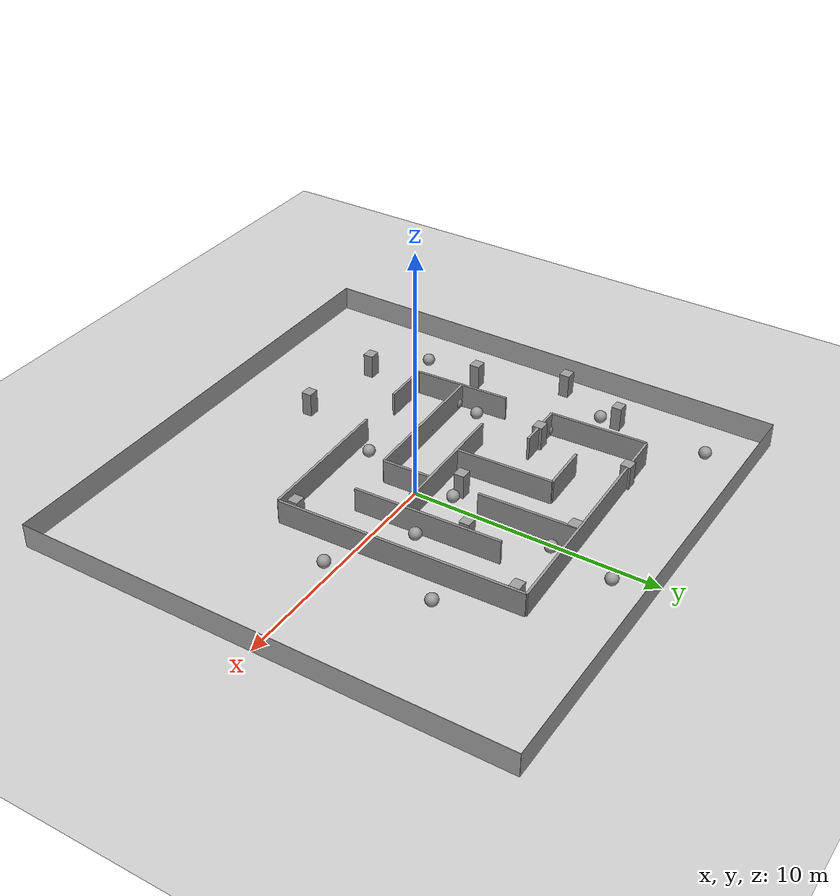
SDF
<sdf version="1.7">
 <world name="default">
  <physics type="ode">
   <max_step_size>0.004</max_step_size>
   <real_time_factor>1</real_time_factor>
   <real_time_update_rate>250</real_time_update_rate>
  </physics>
  <plugin name="gz::sim::systems::Physics" filename="gz-sim-physics-system"/>
  <plugin name="gz::sim::systems::UserCommands" filename="gz-sim-user-commands-system"/>
  <plugin name="gz::sim::systems::SceneBroadcaster" filename="gz-sim-scene-broadcaster-system"/>
  <plugin name="gz::sim::systems::Contact" filename="gz-sim-contact-system"/>
  <plugin name="gz::sim::systems::Imu" filename="gz-sim-imu-system"/>
  <plugin name="gz::sim::systems::Magnetometer" filename="gz-sim-magnetometer-system"/>
  <plugin name="gz::sim::systems::Altimeter" filename="gz-sim-altimeter-system"/>
  <plugin name="gz::sim::systems::NavSat" filename="gz-sim-navsat-system"/>
  <plugin name="gz::sim::systems::Sensors" filename="gz-sim-sensors-system">
   <render_engine>ogre2</render_engine>
  </plugin>
  <gravity>0 0 -9.8</gravity>
  <magnetic_field>6e-06 2.3e-05 -4.2e-05</magnetic_field>
  <atmosphere type="adiabatic"/>
  <spherical_coordinates>
   <surface_model>EARTH_WGS84</surface_model>
   <latitude_deg>39.7948</latitude_deg>
   <longitude_deg>-84.0863</longitude_deg>
   <elevation>265.2</elevation>
   <heading_deg>0</heading_deg>
  </spherical_coordinates>
  <scene>
   <grid>1</grid>
   <ambient>0.4 0.4 0.4 1</ambient>
   <background>0.7 0.7 0.7 1</background>
   <shadows>0</shadows>
  </scene>
  <light name="sunUTC" type="directional">
   <pose>0 0 500 0 -0 0</pose>
   <cast_shadows>0</cast_shadows>
   <direction>0.001 0.625 -0.78</direction>
   <diffuse>0.904 0.904 0.904 1</diffuse>
   <specular>0.271 0.271 0.271 1</specular>
   <attenuation><range>2000</range><linear>0</linear><constant>1</constant><quadratic>0</quadratic></attenuation>
   <spot><inner_angle>0</inner_angle><outer_angle>0</outer_angle><falloff>0</falloff></spot>
   <intensity>1</intensity>
  </light>
  <model name="ground_plane">
   <static>1</static>
   <link name="link">
    <collision name="collision">
     <geometry><plane><normal>0 0 1</normal><size>1 1</size></plane></geometry>
    </collision>
    <visual name="visual">
     <geometry><plane><normal>0 0 1</normal><size>100 100</size></plane></geometry>
     <material>
      <ambient>0.8 0.8 0.8 1</ambient>
      <diffuse>0.8 0.8 0.8 1</diffuse>
      <specular>0.8 0.8 0.8 1</specular>
     </material>
    </visual>
    <inertial>
     <mass>1</mass>
     <inertia><ixx>1</ixx><ixy>0</ixy><ixz>0</ixz><iyy>1</iyy><iyz>0</iyz><izz>1</izz></inertia>
    </inertial>
   </link>
  </model>
  <model name="wall_1">
   <pose>-10 0 0.5 0 0 -1.57</pose>
   <static>1</static>
   <link name="link">
    <collision name="collision"><geometry><box><size>20 0.01 1</size></box></geometry></collision>
    <visual name="visual">
     <geometry><box><size>20 0.01 1</size></box></geometry>
     <material>
      <ambient>0.7 0.7 0.7 1</ambient>
      <diffuse>0.7 0.7 0.7 1</diffuse>
      <specular>0.7 0.7 0.7 1</specular>
     </material>
    </visual>
    <inertial>
     <mass>1</mass>
     <inertia><ixx>1</ixx><ixy>0</ixy><ixz>0</ixz><iyy>1</iyy><iyz>0</iyz><izz>1</izz></inertia>
    </inertial>
   </link>
  </model>
  <model name="wall_2">
   <pose>10 0 0.5 0 0 -1.57</pose>
   <static>1</static>
   <link name="link">
    <collision name="collision"><geometry><box><size>20 0.01 1</size></box></geometry></collision>
    <visual name="visual">
     <geometry><box><size>20 0.01 1</size></box></geometry>
     <material>
      <ambient>0.7 0.7 0.7 1</ambient>
      <diffuse>0.7 0.7 0.7 1</diffuse>
      <specular>0.7 0.7 0.7 1</specular>
     </material>
    </visual>
    <inertial>
     <mass>1</mass>
     <inertia><ixx>1</ixx><ixy>0</ixy><ixz>0</ixz><iyy>1</iyy><iyz>0</iyz><izz>1</izz></inertia>
    </inertial>
   </link>
  </model>
  <model name="wall_3">
   <pose>0 10 0.5 0 -0 0</pose>
   <static>1</static>
   <link name="link">
    <collision name="collision"><geometry><box><size>20 0.01 1</size></box></geometry></collision>
    <visual name="visual">
     <geometry><box><size>20 0.01 1</size></box></geometry>
     <material>
      <ambient>0.7 0.7 0.7 1</ambient>
      <diffuse>0.7 0.7 0.7 1</diffuse>
      <specular>0.7 0.7 0.7 1</specular>
     </material>
    </visual>
    <inertial>
     <mass>1</mass>
     <inertia><ixx>1</ixx><ixy>0</ixy><ixz>0</ixz><iyy>1</iyy><iyz>0</iyz><izz>1</izz></inertia>
    </inertial>
   </link>
  </model>
  <model name="wall_4">
   <pose>0 -10 0.5 0 -0 0</pose>
   <static>1</static>
   <link name="link">
    <collision name="collision"><geometry><box><size>20 0.01 1</size></box></geometry></collision>
    <visual name="visual">
     <geometry><box><size>20 0.01 1</size></box></geometry>
     <material>
      <ambient>0.7 0.7 0.7 1</ambient>
      <diffuse>0.7 0.7 0.7 1</diffuse>
      <specular>0.7 0.7 0.7 1</specular>
     </material>
    </visual>
    <inertial>
     <mass>1</mass>
     <inertia><ixx>1</ixx><ixy>0</ixy><ixz>0</ixz><iyy>1</iyy><iyz>0</iyz><izz>1</izz></inertia>
    </inertial>
   </link>
  </model>
  <model name="s_maze">
   <link name="link_0_clone">
    <inertial>
     <mass>2000</mass>
     <inertia><ixx>16833.3</ixx><ixy>0</ixy><ixz>0</ixz><iyy>168.333</iyy><iyz>0</iyz><izz>16668.3</izz></inertia>
    </inertial>
    <pose>5 0 0 0 -0 0</pose>
    <visual name="visual">
     <geometry><box><size>0.1 10 1</size></box></geometry>
     <material>
      <lighting>1</lighting>
      <script><uri>file://media/materials/scripts/gazebo.material</uri><name>Gazebo/Grey</name></script>
      <shader type="vertex"><normal_map>__default__</normal_map></shader>
      <ambient>0.3 0.3 0.3 1</ambient>
      <diffuse>0.7 0.7 0.7 1</diffuse>
      <specular>0.01 0.01 0.01 1</specular>
      <emissive>0 0 0 1</emissive>
     </material>
    </visual>
    <collision name="collision">
     <geometry><box><size>0.1 10 1</size></box></geometry>
     <surface>
      <friction>
       <ode><mu>1</mu><mu2>1</mu2><fdir1>0 0 0</fdir1><slip1>0</slip1><slip2>0</slip2></ode>
       <torsional>
        <coefficient>1</coefficient>
        <patch_radius>0</patch_radius>
        <surface_radius>0</surface_radius>
        <use_patch_radius>1</use_patch_radius>
        <ode><slip>0</slip></ode>
       </torsional>
      </friction>
      <bounce><restitution_coefficient>0</restitution_coefficient><threshold>1e+06</threshold></bounce>
      <contact>
       <collide_without_contact>0</collide_without_contact>
       <collide_without_contact_bitmask>1</collide_without_contact_bitmask>
       <collide_bitmask>1</collide_bitmask>
       <ode>
        <soft_cfm>0</soft_cfm>
        <soft_erp>0.2</soft_erp>
        <kp>1e+13</kp>
        <kd>1</kd>
        <max_vel>0.01</max_vel>
        <min_depth>0</min_depth>
       </ode>
       <bullet>
        <split_impulse>1</split_impulse>
        <split_impulse_penetration_threshold>-0.01</split_impulse_penetration_threshold>
        <soft_cfm>0</soft_cfm>
        <soft_erp>0.2</soft_erp>
        <kp>1e+13</kp>
        <kd>1</kd>
       </bullet>
      </contact>
     </surface>
    </collision>
   </link>
   <link name="link_0_clone_0_clone">
    <inertial>
     <mass>400</mass>
     <inertia><ixx>166.667</ixx><ixy>0</ixy><ixz>0</ixz><iyy>33.6667</iyy><iyz>0</iyz><izz>133.667</izz></inertia>
    </inertial>
    <pose>1 -2 -0 0 -0 0</pose>
    <visual name="visual">
     <geometry><box><size>0.1 2 1</size></box></geometry>
     <material>
      <lighting>1</lighting>
      <script><uri>file://media/materials/scripts/gazebo.material</uri><name>Gazebo/Grey</name></script>
      <shader type="vertex"><normal_map>__default__</normal_map></shader>
      <ambient>0.3 0.3 0.3 1</ambient>
      <diffuse>0.7 0.7 0.7 1</diffuse>
      <specular>0.01 0.01 0.01 1</specular>
      <emissive>0 0 0 1</emissive>
     </material>
    </visual>
    <collision name="collision">
     <geometry><box><size>0.1 2 1</size></box></geometry>
     <surface>
      <friction>
       <ode><mu>1</mu><mu2>1</mu2><fdir1>0 0 0</fdir1><slip1>0</slip1><slip2>0</slip2></ode>
       <torsional>
        <coefficient>1</coefficient>
        <patch_radius>0</patch_radius>
        <surface_radius>0</surface_radius>
        <use_patch_radius>1</use_patch_radius>
        <ode><slip>0</slip></ode>
       </torsional>
      </friction>
      <bounce><restitution_coefficient>0</restitution_coefficient><threshold>1e+06</threshold></bounce>
      <contact>
       <collide_without_contact>0</collide_without_contact>
       <collide_without_contact_bitmask>1</collide_without_contact_bitmask>
       <collide_bitmask>1</collide_bitmask>
       <ode>
        <soft_cfm>0</soft_cfm>
        <soft_erp>0.2</soft_erp>
        <kp>1e+13</kp>
        <kd>1</kd>
        <max_vel>0.01</max_vel>
        <min_depth>0</min_depth>
       </ode>
       <bullet>
        <split_impulse>1</split_impulse>
        <split_impulse_penetration_threshold>-0.01</split_impulse_penetration_threshold>
        <soft_cfm>0</soft_cfm>
        <soft_erp>0.2</soft_erp>
        <kp>1e+13</kp>
        <kd>1</kd>
       </bullet>
      </contact>
     </surface>
    </collision>
   </link>
   <link name="link_0_clone_1_clone">
    <inertial>
     <mass>2000</mass>
     <inertia><ixx>16833.3</ixx><ixy>0</ixy><ixz>0</ixz><iyy>168.333</iyy><iyz>0</iyz><izz>16668.3</izz></inertia>
    </inertial>
    <pose>-0 5 -0 0 -0 1.5708</pose>
    <visual name="visual">
     <geometry><box><size>0.1 10 1</size></box></geometry>
     <material>
      <lighting>1</lighting>
      <script><uri>file://media/materials/scripts/gazebo.material</uri><name>Gazebo/Grey</name></script>
      <shader type="vertex"><normal_map>__default__</normal_map></shader>
      <ambient>0.3 0.3 0.3 1</ambient>
      <diffuse>0.7 0.7 0.7 1</diffuse>
      <specular>0.01 0.01 0.01 1</specular>
      <emissive>0 0 0 1</emissive>
     </material>
    </visual>
    <collision name="collision">
     <geometry><box><size>0.1 10 1</size></box></geometry>
     <surface>
      <friction>
       <ode><mu>1</mu><mu2>1</mu2><fdir1>0 0 0</fdir1><slip1>0</slip1><slip2>0</slip2></ode>
       <torsional>
        <coefficient>1</coefficient>
        <patch_radius>0</patch_radius>
        <surface_radius>0</surface_radius>
        <use_patch_radius>1</use_patch_radius>
        <ode><slip>0</slip></ode>
       </torsional>
      </friction>
      <bounce><restitution_coefficient>0</restitution_coefficient><threshold>1e+06</threshold></bounce>
      <contact>
       <collide_without_contact>0</collide_without_contact>
       <collide_without_contact_bitmask>1</collide_without_contact_bitmask>
       <collide_bitmask>1</collide_bitmask>
       <ode>
        <soft_cfm>0</soft_cfm>
        <soft_erp>0.2</soft_erp>
        <kp>1e+13</kp>
        <kd>1</kd>
        <max_vel>0.01</max_vel>
        <min_depth>0</min_depth>
       </ode>
       <bullet>
        <split_impulse>1</split_impulse>
        <split_impulse_penetration_threshold>-0.01</split_impulse_penetration_threshold>
        <soft_cfm>0</soft_cfm>
        <soft_erp>0.2</soft_erp>
        <kp>1e+13</kp>
        <kd>1</kd>
       </bullet>
      </contact>
     </surface>
    </collision>
   </link>
   <link name="link_0_clone_1_clone_0">
    <inertial>
     <mass>1200</mass>
     <inertia><ixx>3700</ixx><ixy>0</ixy><ixz>0</ixz><iyy>101</iyy><iyz>0</iyz><izz>3601</izz></inertia>
    </inertial>
    <pose>-2 -3 -0 0 -0 1.5708</pose>
    <visual name="visual">
     <geometry><box><size>0.1 6 1</size></box></geometry>
     <material>
      <lighting>1</lighting>
      <script><uri>file://media/materials/scripts/gazebo.material</uri><name>Gazebo/Grey</name></script>
      <shader type="vertex"><normal_map>__default__</normal_map></shader>
      <ambient>0.3 0.3 0.3 1</ambient>
      <diffuse>0.7 0.7 0.7 1</diffuse>
      <specular>0.01 0.01 0.01 1</specular>
      <emissive>0 0 0 1</emissive>
     </material>
    </visual>
    <collision name="collision">
     <geometry><box><size>0.1 6 1</size></box></geometry>
     <surface>
      <friction>
       <ode><mu>1</mu><mu2>1</mu2><fdir1>0 0 0</fdir1><slip1>0</slip1><slip2>0</slip2></ode>
       <torsional>
        <coefficient>1</coefficient>
        <patch_radius>0</patch_radius>
        <surface_radius>0</surface_radius>
        <use_patch_radius>1</use_patch_radius>
        <ode><slip>0</slip></ode>
       </torsional>
      </friction>
      <bounce><restitution_coefficient>0</restitution_coefficient><threshold>1e+06</threshold></bounce>
      <contact>
       <collide_without_contact>0</collide_without_contact>
       <collide_without_contact_bitmask>1</collide_without_contact_bitmask>
       <collide_bitmask>1</collide_bitmask>
       <ode>
        <soft_cfm>0</soft_cfm>
        <soft_erp>0.2</soft_erp>
        <kp>1e+13</kp>
        <kd>1</kd>
        <max_vel>0.01</max_vel>
        <min_depth>0</min_depth>
       </ode>
       <bullet>
        <split_impulse>1</split_impulse>
        <split_impulse_penetration_threshold>-0.01</split_impulse_penetration_threshold>
        <soft_cfm>0</soft_cfm>
        <soft_erp>0.2</soft_erp>
        <kp>1e+13</kp>
        <kd>1</kd>
       </bullet>
      </contact>
     </surface>
    </collision>
   </link>
   <link name="link_0_clone_1_clone_0_clone">
    <inertial>
     <mass>1200</mass>
     <inertia><ixx>3700</ixx><ixy>0</ixy><ixz>0</ixz><iyy>101</iyy><iyz>0</iyz><izz>3601</izz></inertia>
    </inertial>
    <pose>-0 -1 0 0 -0 1.5708</pose>
    <visual name="visual">
     <geometry><box><size>0.1 6 1</size></box></geometry>
     <material>
      <lighting>1</lighting>
      <script><uri>file://media/materials/scripts/gazebo.material</uri><name>Gazebo/Grey</name></script>
      <shader type="vertex"><normal_map>__default__</normal_map></shader>
      <ambient>0.3 0.3 0.3 1</ambient>
      <diffuse>0.7 0.7 0.7 1</diffuse>
      <specular>0.01 0.01 0.01 1</specular>
      <emissive>0 0 0 1</emissive>
     </material>
    </visual>
    <collision name="collision">
     <geometry><box><size>0.1 6 1</size></box></geometry>
     <surface>
      <friction>
       <ode><mu>1</mu><mu2>1</mu2><fdir1>0 0 0</fdir1><slip1>0</slip1><slip2>0</slip2></ode>
       <torsional>
        <coefficient>1</coefficient>
        <patch_radius>0</patch_radius>
        <surface_radius>0</surface_radius>
        <use_patch_radius>1</use_patch_radius>
        <ode><slip>0</slip></ode>
       </torsional>
      </friction>
      <bounce><restitution_coefficient>0</restitution_coefficient><threshold>1e+06</threshold></bounce>
      <contact>
       <collide_without_contact>0</collide_without_contact>
       <collide_without_contact_bitmask>1</collide_without_contact_bitmask>
       <collide_bitmask>1</collide_bitmask>
       <ode>
        <soft_cfm>0</soft_cfm>
        <soft_erp>0.2</soft_erp>
        <kp>1e+13</kp>
        <kd>1</kd>
        <max_vel>0.01</max_vel>
        <min_depth>0</min_depth>
       </ode>
       <bullet>
        <split_impulse>1</split_impulse>
        <split_impulse_penetration_threshold>-0.01</split_impulse_penetration_threshold>
        <soft_cfm>0</soft_cfm>
        <soft_erp>0.2</soft_erp>
        <kp>1e+13</kp>
        <kd>1</kd>
       </bullet>
      </contact>
     </surface>
    </collision>
   </link>
   <link name="link_0_clone_1_clone_0_clone_0">
    <inertial>
     <mass>1200</mass>
     <inertia><ixx>3700</ixx><ixy>0</ixy><ixz>0</ixz><iyy>101</iyy><iyz>0</iyz><izz>3601</izz></inertia>
    </inertial>
    <pose>2 -5 0 -0.004588 -0.005224 1.5715</pose>
    <visual name="visual">
     <geometry><box><size>0.1 6 1</size></box></geometry>
     <material>
      <lighting>1</lighting>
      <script><uri>file://media/materials/scripts/gazebo.material</uri><name>Gazebo/Grey</name></script>
      <shader type="vertex"><normal_map>__default__</normal_map></shader>
      <ambient>0.3 0.3 0.3 1</ambient>
      <diffuse>0.7 0.7 0.7 1</diffuse>
      <specular>0.01 0.01 0.01 1</specular>
      <emissive>0 0 0 1</emissive>
     </material>
    </visual>
    <collision name="collision">
     <geometry><box><size>0.1 6 1</size></box></geometry>
     <surface>
      <friction>
       <ode><mu>1</mu><mu2>1</mu2><fdir1>0 0 0</fdir1><slip1>0</slip1><slip2>0</slip2></ode>
       <torsional>
        <coefficient>1</coefficient>
        <patch_radius>0</patch_radius>
        <surface_radius>0</surface_radius>
        <use_patch_radius>1</use_patch_radius>
        <ode><slip>0</slip></ode>
       </torsional>
      </friction>
      <bounce><restitution_coefficient>0</restitution_coefficient><threshold>1e+06</threshold></bounce>
      <contact>
       <collide_without_contact>0</collide_without_contact>
       <collide_without_contact_bitmask>1</collide_without_contact_bitmask>
       <collide_bitmask>1</collide_bitmask>
       <ode>
        <soft_cfm>0</soft_cfm>
        <soft_erp>0.2</soft_erp>
        <kp>1e+13</kp>
        <kd>1</kd>
        <max_vel>0.01</max_vel>
        <min_depth>0</min_depth>
       </ode>
       <bullet>
        <split_impulse>1</split_impulse>
        <split_impulse_penetration_threshold>-0.01</split_impulse_penetration_threshold>
        <soft_cfm>0</soft_cfm>
        <soft_erp>0.2</soft_erp>
        <kp>1e+13</kp>
        <kd>1</kd>
       </bullet>
      </contact>
     </surface>
    </collision>
   </link>
   <link name="link_0_clone_1_clone_0_clone_clone">
    <inertial>
     <mass>400</mass>
     <inertia><ixx>166.667</ixx><ixy>0</ixy><ixz>0</ixz><iyy>33.6667</iyy><iyz>0</iyz><izz>133.667</izz></inertia>
    </inertial>
    <pose>-2 3 -0 0 -0 1.5708</pose>
    <visual name="visual">
     <geometry><box><size>0.1 2 1</size></box></geometry>
     <material>
      <lighting>1</lighting>
      <script><uri>file://media/materials/scripts/gazebo.material</uri><name>Gazebo/Grey</name></script>
      <shader type="vertex"><normal_map>__default__</normal_map></shader>
      <ambient>0.3 0.3 0.3 1</ambient>
      <diffuse>0.7 0.7 0.7 1</diffuse>
      <specular>0.01 0.01 0.01 1</specular>
      <emissive>0 0 0 1</emissive>
     </material>
    </visual>
    <collision name="collision">
     <geometry><box><size>0.1 2 1</size></box></geometry>
     <surface>
      <friction>
       <ode><mu>1</mu><mu2>1</mu2><fdir1>0 0 0</fdir1><slip1>0</slip1><slip2>0</slip2></ode>
       <torsional>
        <coefficient>1</coefficient>
        <patch_radius>0</patch_radius>
        <surface_radius>0</surface_radius>
        <use_patch_radius>1</use_patch_radius>
        <ode><slip>0</slip></ode>
       </torsional>
      </friction>
      <bounce><restitution_coefficient>0</restitution_coefficient><threshold>1e+06</threshold></bounce>
      <contact>
       <collide_without_contact>0</collide_without_contact>
       <collide_without_contact_bitmask>1</collide_without_contact_bitmask>
       <collide_bitmask>1</collide_bitmask>
       <ode>
        <soft_cfm>0</soft_cfm>
        <soft_erp>0.2</soft_erp>
        <kp>1e+13</kp>
        <kd>1</kd>
        <max_vel>0.01</max_vel>
        <min_depth>0</min_depth>
       </ode>
       <bullet>
        <split_impulse>1</split_impulse>
        <split_impulse_penetration_threshold>-0.01</split_impulse_penetration_threshold>
        <soft_cfm>0</soft_cfm>
        <soft_erp>0.2</soft_erp>
        <kp>1e+13</kp>
        <kd>1</kd>
       </bullet>
      </contact>
     </surface>
    </collision>
   </link>
   <link name="link_0_clone_1_clone_0_clone_clone_clone">
    <inertial>
     <mass>400</mass>
     <inertia><ixx>166.667</ixx><ixy>0</ixy><ixz>0</ixz><iyy>33.6667</iyy><iyz>0</iyz><izz>133.667</izz></inertia>
    </inertial>
    <pose>-4 1 0 0 -0 1.5708</pose>
    <visual name="visual">
     <geometry><box><size>0.1 2 1</size></box></geometry>
     <material>
      <lighting>1</lighting>
      <script><uri>file://media/materials/scripts/gazebo.material</uri><name>Gazebo/Grey</name></script>
      <shader type="vertex"><normal_map>__default__</normal_map></shader>
      <ambient>0.3 0.3 0.3 1</ambient>
      <diffuse>0.7 0.7 0.7 1</diffuse>
      <specular>0.01 0.01 0.01 1</specular>
      <emissive>0 0 0 1</emissive>
     </material>
    </visual>
    <collision name="collision">
     <geometry><box><size>0.1 2 1</size></box></geometry>
     <surface>
      <friction>
       <ode><mu>1</mu><mu2>1</mu2><fdir1>0 0 0</fdir1><slip1>0</slip1><slip2>0</slip2></ode>
       <torsional>
        <coefficient>1</coefficient>
        <patch_radius>0</patch_radius>
        <surface_radius>0</surface_radius>
        <use_patch_radius>1</use_patch_radius>
        <ode><slip>0</slip></ode>
       </torsional>
      </friction>
      <bounce><restitution_coefficient>0</restitution_coefficient><threshold>1e+06</threshold></bounce>
      <contact>
       <collide_without_contact>0</collide_without_contact>
       <collide_without_contact_bitmask>1</collide_without_contact_bitmask>
       <collide_bitmask>1</collide_bitmask>
       <ode>
        <soft_cfm>0</soft_cfm>
        <soft_erp>0.2</soft_erp>
        <kp>1e+13</kp>
        <kd>1</kd>
        <max_vel>0.01</max_vel>
        <min_depth>0</min_depth>
       </ode>
       <bullet>
        <split_impulse>1</split_impulse>
        <split_impulse_penetration_threshold>-0.01</split_impulse_penetration_threshold>
        <soft_cfm>0</soft_cfm>
        <soft_erp>0.2</soft_erp>
        <kp>1e+13</kp>
        <kd>1</kd>
       </bullet>
      </contact>
     </surface>
    </collision>
   </link>
   <link name="link_0_clone_1_clone_0_clone_clone_clone_0">
    <inertial>
     <mass>400</mass>
     <inertia><ixx>166.667</ixx><ixy>0</ixy><ixz>0</ixz><iyy>33.6667</iyy><iyz>0</iyz><izz>133.667</izz></inertia>
    </inertial>
    <pose>-4 -5 -0 -0.004588 -0.005224 1.5715</pose>
    <visual name="visual">
     <geometry><box><size>0.1 2 1</size></box></geometry>
     <material>
      <lighting>1</lighting>
      <script><uri>file://media/materials/scripts/gazebo.material</uri><name>Gazebo/Grey</name></script>
      <shader type="vertex"><normal_map>__default__</normal_map></shader>
      <ambient>0.3 0.3 0.3 1</ambient>
      <diffuse>0.7 0.7 0.7 1</diffuse>
      <specular>0.01 0.01 0.01 1</specular>
      <emissive>0 0 0 1</emissive>
     </material>
    </visual>
    <collision name="collision">
     <geometry><box><size>0.1 2 1</size></box></geometry>
     <surface>
      <friction>
       <ode><mu>1</mu><mu2>1</mu2><fdir1>0 0 0</fdir1><slip1>0</slip1><slip2>0</slip2></ode>
       <torsional>
        <coefficient>1</coefficient>
        <patch_radius>0</patch_radius>
        <surface_radius>0</surface_radius>
        <use_patch_radius>1</use_patch_radius>
        <ode><slip>0</slip></ode>
       </torsional>
      </friction>
      <bounce><restitution_coefficient>0</restitution_coefficient><threshold>1e+06</threshold></bounce>
      <contact>
       <collide_without_contact>0</collide_without_contact>
       <collide_without_contact_bitmask>1</collide_without_contact_bitmask>
       <collide_bitmask>1</collide_bitmask>
       <ode>
        <soft_cfm>0</soft_cfm>
        <soft_erp>0.2</soft_erp>
        <kp>1e+13</kp>
        <kd>1</kd>
        <max_vel>0.01</max_vel>
        <min_depth>0</min_depth>
       </ode>
       <bullet>
        <split_impulse>1</split_impulse>
        <split_impulse_penetration_threshold>-0.01</split_impulse_penetration_threshold>
        <soft_cfm>0</soft_cfm>
        <soft_erp>0.2</soft_erp>
        <kp>1e+13</kp>
        <kd>1</kd>
       </bullet>
      </contact>
     </surface>
    </collision>
   </link>
   <link name="link_0_clone_2">
    <inertial>
     <mass>1200</mass>
     <inertia><ixx>3700</ixx><ixy>0</ixy><ixz>0</ixz><iyy>101</iyy><iyz>0</iyz><izz>3601</izz></inertia>
    </inertial>
    <pose>3 -0 -0 0 -0 0</pose>
    <visual name="visual">
     <geometry><box><size>0.1 6 1</size></box></geometry>
     <material>
      <lighting>1</lighting>
      <script><uri>file://media/materials/scripts/gazebo.material</uri><name>Gazebo/Grey</name></script>
      <shader type="vertex"><normal_map>__default__</normal_map></shader>
      <ambient>0.3 0.3 0.3 1</ambient>
      <diffuse>0.7 0.7 0.7 1</diffuse>
      <specular>0.01 0.01 0.01 1</specular>
      <emissive>0 0 0 1</emissive>
     </material>
    </visual>
    <collision name="collision">
     <geometry><box><size>0.1 6 1</size></box></geometry>
     <surface>
      <friction>
       <ode><mu>1</mu><mu2>1</mu2><fdir1>0 0 0</fdir1><slip1>0</slip1><slip2>0</slip2></ode>
       <torsional>
        <coefficient>1</coefficient>
        <patch_radius>0</patch_radius>
        <surface_radius>0</surface_radius>
        <use_patch_radius>1</use_patch_radius>
        <ode><slip>0</slip></ode>
       </torsional>
      </friction>
      <bounce><restitution_coefficient>0</restitution_coefficient><threshold>1e+06</threshold></bounce>
      <contact>
       <collide_without_contact>0</collide_without_contact>
       <collide_without_contact_bitmask>1</collide_without_contact_bitmask>
       <collide_bitmask>1</collide_bitmask>
       <ode>
        <soft_cfm>0</soft_cfm>
        <soft_erp>0.2</soft_erp>
        <kp>1e+13</kp>
        <kd>1</kd>
        <max_vel>0.01</max_vel>
        <min_depth>0</min_depth>
       </ode>
       <bullet>
        <split_impulse>1</split_impulse>
        <split_impulse_penetration_threshold>-0.01</split_impulse_penetration_threshold>
        <soft_cfm>0</soft_cfm>
        <soft_erp>0.2</soft_erp>
        <kp>1e+13</kp>
        <kd>1</kd>
       </bullet>
      </contact>
     </surface>
    </collision>
   </link>
   <link name="link_0_clone_2_clone">
    <inertial>
     <mass>0.188114</mass>
     <inertia>
      <ixx>0.0313523</ixx>
      <ixy>0</ixy>
      <ixz>0</ixz>
      <iyy>0.0162309</iyy>
      <iyz>0</iyz>
      <izz>0.0162309</izz>
     </inertia>
    </inertial>
    <pose>-1 1 0 0 -0 0</pose>
    <visual name="visual">
     <geometry><box><size>0.1 4 1</size></box></geometry>
     <material>
      <lighting>1</lighting>
      <script><uri>file://media/materials/scripts/gazebo.material</uri><name>Gazebo/Grey</name></script>
      <shader type="vertex"><normal_map>__default__</normal_map></shader>
      <ambient>0.3 0.3 0.3 1</ambient>
      <diffuse>0.7 0.7 0.7 1</diffuse>
      <specular>0.01 0.01 0.01 1</specular>
      <emissive>0 0 0 1</emissive>
     </material>
    </visual>
    <collision name="collision">
     <geometry><box><size>0.1 4 1</size></box></geometry>
     <surface>
      <friction>
       <ode><mu>1</mu><mu2>1</mu2><fdir1>0 0 0</fdir1><slip1>0</slip1><slip2>0</slip2></ode>
       <torsional>
        <coefficient>1</coefficient>
        <patch_radius>0</patch_radius>
        <surface_radius>0</surface_radius>
        <use_patch_radius>1</use_patch_radius>
        <ode><slip>0</slip></ode>
       </torsional>
      </friction>
      <bounce><restitution_coefficient>0</restitution_coefficient><threshold>1e+06</threshold></bounce>
      <contact>
       <collide_without_contact>0</collide_without_contact>
       <collide_without_contact_bitmask>1</collide_without_contact_bitmask>
       <collide_bitmask>1</collide_bitmask>
       <ode>
        <soft_cfm>0</soft_cfm>
        <soft_erp>0.2</soft_erp>
        <kp>1e+13</kp>
        <kd>1</kd>
        <max_vel>0.01</max_vel>
        <min_depth>0</min_depth>
       </ode>
       <bullet>
        <split_impulse>1</split_impulse>
        <split_impulse_penetration_threshold>-0.01</split_impulse_penetration_threshold>
        <soft_cfm>0</soft_cfm>
        <soft_erp>0.2</soft_erp>
        <kp>1e+13</kp>
        <kd>1</kd>
       </bullet>
      </contact>
     </surface>
    </collision>
   </link>
   <link name="link_0_clone_2_clone_clone">
    <inertial>
     <mass>800</mass>
     <inertia><ixx>1133.33</ixx><ixy>0</ixy><ixz>0</ixz><iyy>67.3333</iyy><iyz>0</iyz><izz>1067.33</izz></inertia>
    </inertial>
    <pose>1 3 -0 0 -0 0</pose>
    <visual name="visual">
     <geometry><box><size>0.1 4 1</size></box></geometry>
     <material>
      <lighting>1</lighting>
      <script><uri>file://media/materials/scripts/gazebo.material</uri><name>Gazebo/Grey</name></script>
      <shader type="vertex"><normal_map>__default__</normal_map></shader>
      <ambient>0.3 0.3 0.3 1</ambient>
      <diffuse>0.7 0.7 0.7 1</diffuse>
      <specular>0.01 0.01 0.01 1</specular>
      <emissive>0 0 0 1</emissive>
     </material>
    </visual>
    <collision name="collision">
     <geometry><box><size>0.1 4 1</size></box></geometry>
     <surface>
      <friction>
       <ode><mu>1</mu><mu2>1</mu2><fdir1>0 0 0</fdir1><slip1>0</slip1><slip2>0</slip2></ode>
       <torsional>
        <coefficient>1</coefficient>
        <patch_radius>0</patch_radius>
        <surface_radius>0</surface_radius>
        <use_patch_radius>1</use_patch_radius>
        <ode><slip>0</slip></ode>
       </torsional>
      </friction>
      <bounce><restitution_coefficient>0</restitution_coefficient><threshold>1e+06</threshold></bounce>
      <contact>
       <collide_without_contact>0</collide_without_contact>
       <collide_without_contact_bitmask>1</collide_without_contact_bitmask>
       <collide_bitmask>1</collide_bitmask>
       <ode>
        <soft_cfm>0</soft_cfm>
        <soft_erp>0.2</soft_erp>
        <kp>1e+13</kp>
        <kd>1</kd>
        <max_vel>0.01</max_vel>
        <min_depth>0</min_depth>
       </ode>
       <bullet>
        <split_impulse>1</split_impulse>
        <split_impulse_penetration_threshold>-0.01</split_impulse_penetration_threshold>
        <soft_cfm>0</soft_cfm>
        <soft_erp>0.2</soft_erp>
        <kp>1e+13</kp>
        <kd>1</kd>
       </bullet>
      </contact>
     </surface>
    </collision>
   </link>
   <link name="link_0_clone_2_clone_clone_0">
    <inertial>
     <mass>800</mass>
     <inertia><ixx>1133.33</ixx><ixy>0</ixy><ixz>0</ixz><iyy>67.3333</iyy><iyz>0</iyz><izz>1067.33</izz></inertia>
    </inertial>
    <pose>-5 3 -0 0.005224 -0.004588 0.000681</pose>
    <visual name="visual">
     <geometry><box><size>0.1 4 1</size></box></geometry>
     <material>
      <lighting>1</lighting>
      <script><uri>file://media/materials/scripts/gazebo.material</uri><name>Gazebo/Grey</name></script>
      <shader type="vertex"><normal_map>__default__</normal_map></shader>
      <ambient>0.3 0.3 0.3 1</ambient>
      <diffuse>0.7 0.7 0.7 1</diffuse>
      <specular>0.01 0.01 0.01 1</specular>
      <emissive>0 0 0 1</emissive>
     </material>
    </visual>
    <collision name="collision">
     <geometry><box><size>0.1 4 1</size></box></geometry>
     <surface>
      <friction>
       <ode><mu>1</mu><mu2>1</mu2><fdir1>0 0 0</fdir1><slip1>0</slip1><slip2>0</slip2></ode>
       <torsional>
        <coefficient>1</coefficient>
        <patch_radius>0</patch_radius>
        <surface_radius>0</surface_radius>
        <use_patch_radius>1</use_patch_radius>
        <ode><slip>0</slip></ode>
       </torsional>
      </friction>
      <bounce><restitution_coefficient>0</restitution_coefficient><threshold>1e+06</threshold></bounce>
      <contact>
       <collide_without_contact>0</collide_without_contact>
       <collide_without_contact_bitmask>1</collide_without_contact_bitmask>
       <collide_bitmask>1</collide_bitmask>
       <ode>
        <soft_cfm>0</soft_cfm>
        <soft_erp>0.2</soft_erp>
        <kp>1e+13</kp>
        <kd>1</kd>
        <max_vel>0.01</max_vel>
        <min_depth>0</min_depth>
       </ode>
       <bullet>
        <split_impulse>1</split_impulse>
        <split_impulse_penetration_threshold>-0.01</split_impulse_penetration_threshold>
        <soft_cfm>0</soft_cfm>
        <soft_erp>0.2</soft_erp>
        <kp>1e+13</kp>
        <kd>1</kd>
       </bullet>
      </contact>
     </surface>
    </collision>
   </link>
   <link name="link_0_clone_2_clone_clone_0_clone">
    <inertial>
     <mass>800</mass>
     <inertia><ixx>1133.33</ixx><ixy>0</ixy><ixz>0</ixz><iyy>67.3333</iyy><iyz>0</iyz><izz>1067.33</izz></inertia>
    </inertial>
    <pose>-5 -3 -0 0.010445 -0.009179 0.001338</pose>
    <visual name="visual">
     <geometry><box><size>0.1 4 1</size></box></geometry>
     <material>
      <lighting>1</lighting>
      <script><uri>file://media/materials/scripts/gazebo.material</uri><name>Gazebo/Grey</name></script>
      <shader type="vertex"><normal_map>__default__</normal_map></shader>
      <ambient>0.3 0.3 0.3 1</ambient>
      <diffuse>0.7 0.7 0.7 1</diffuse>
      <specular>0.01 0.01 0.01 1</specular>
      <emissive>0 0 0 1</emissive>
     </material>
    </visual>
    <collision name="collision">
     <geometry><box><size>0.1 4 1</size></box></geometry>
     <surface>
      <friction>
       <ode><mu>1</mu><mu2>1</mu2><fdir1>0 0 0</fdir1><slip1>0</slip1><slip2>0</slip2></ode>
       <torsional>
        <coefficient>1</coefficient>
        <patch_radius>0</patch_radius>
        <surface_radius>0</surface_radius>
        <use_patch_radius>1</use_patch_radius>
        <ode><slip>0</slip></ode>
       </torsional>
      </friction>
      <bounce><restitution_coefficient>0</restitution_coefficient><threshold>1e+06</threshold></bounce>
      <contact>
       <collide_without_contact>0</collide_without_contact>
       <collide_without_contact_bitmask>1</collide_without_contact_bitmask>
       <collide_bitmask>1</collide_bitmask>
       <ode>
        <soft_cfm>0</soft_cfm>
        <soft_erp>0.2</soft_erp>
        <kp>1e+13</kp>
        <kd>1</kd>
        <max_vel>0.01</max_vel>
        <min_depth>0</min_depth>
       </ode>
       <bullet>
        <split_impulse>1</split_impulse>
        <split_impulse_penetration_threshold>-0.01</split_impulse_penetration_threshold>
        <soft_cfm>0</soft_cfm>
        <soft_erp>0.2</soft_erp>
        <kp>1e+13</kp>
        <kd>1</kd>
       </bullet>
      </contact>
     </surface>
    </collision>
   </link>
   <static>0</static>
   <pose>-1.10381 1.56594 0.499698 -7.6e-05 1.5e-05 0.033492</pose>
  </model>
  <audio><device>default</device></audio>
  <model name="unit_box">
   <pose>-0.910755 1.44402 0.500022 0 -9.7e-05 3.9e-05</pose>
   <link name="link">
    <inertial>
     <mass>1</mass>
     <inertia>
      <ixx>0.166667</ixx>
      <ixy>0</ixy>
      <ixz>0</ixz>
      <iyy>0.166667</iyy>
      <iyz>0</iyz>
      <izz>0.166667</izz>
     </inertia>
    </inertial>
    <collision name="collision"><geometry><box><size>0.459236 0.414137 1</size></box></geometry></collision>
    <visual name="visual">
     <geometry><box><size>0.459236 0.414137 1</size></box></geometry>
     <material>
      <script><name>Gazebo/Grey</name><uri>file://media/materials/scripts/gazebo.material</uri></script>
     </material>
    </visual>
   </link>
  </model>
  <model name="unit_box_clone">
   <pose>-0.483426 6.34889 0.499971 0.000103 3.2e-05 7.9e-05</pose>
   <link name="link">
    <inertial>
     <mass>1</mass>
     <inertia>
      <ixx>0.166667</ixx>
      <ixy>0</ixy>
      <ixz>0</ixz>
      <iyy>0.166667</iyy>
      <iyz>0</iyz>
      <izz>0.166667</izz>
     </inertia>
    </inertial>
    <collision name="collision"><geometry><box><size>0.459236 0.414137 1</size></box></geometry></collision>
    <visual name="visual">
     <geometry><box><size>0.459236 0.414137 1</size></box></geometry>
     <material>
      <script><name>Gazebo/Grey</name><uri>file://media/materials/scripts/gazebo.material</uri></script>
     </material>
    </visual>
   </link>
  </model>
  <model name="unit_box_clone_0">
   <pose>-5.18544 2.39267 0.500022 -0 -9.7e-05 6.7e-05</pose>
   <link name="link">
    <inertial>
     <mass>1</mass>
     <inertia>
      <ixx>0.166667</ixx>
      <ixy>0</ixy>
      <ixz>0</ixz>
      <iyy>0.166667</iyy>
      <iyz>0</iyz>
      <izz>0.166667</izz>
     </inertia>
    </inertial>
    <collision name="collision"><geometry><box><size>0.459236 0.414137 1</size></box></geometry></collision>
    <visual name="visual">
     <geometry><box><size>0.459236 0.414137 1</size></box></geometry>
     <material>
      <script><name>Gazebo/Grey</name><uri>file://media/materials/scripts/gazebo.material</uri></script>
     </material>
    </visual>
   </link>
  </model>
  <model name="unit_box_clone_1">
   <pose>-4.69433 6.38053 0.500022 0 9.7e-05 7.3e-05</pose>
   <link name="link">
    <inertial>
     <mass>1</mass>
     <inertia>
      <ixx>0.166667</ixx>
      <ixy>0</ixy>
      <ixz>0</ixz>
      <iyy>0.166667</iyy>
      <iyz>0</iyz>
      <izz>0.166667</izz>
     </inertia>
    </inertial>
    <collision name="collision"><geometry><box><size>0.459236 0.414137 1</size></box></geometry></collision>
    <visual name="visual">
     <geometry><box><size>0.459236 0.414137 1</size></box></geometry>
     <material>
      <script><name>Gazebo/Grey</name><uri>file://media/materials/scripts/gazebo.material</uri></script>
     </material>
    </visual>
   </link>
  </model>
  <model name="unit_box_clone_2">
   <pose>1.42789 3.0627 0.499971 0.000103 3.2e-05 8.4e-05</pose>
   <link name="link">
    <inertial>
     <mass>1</mass>
     <inertia>
      <ixx>0.166667</ixx>
      <ixy>0</ixy>
      <ixz>0</ixz>
      <iyy>0.166667</iyy>
      <iyz>0</iyz>
      <izz>0.166667</izz>
     </inertia>
    </inertial>
    <collision name="collision"><geometry><box><size>0.459236 0.414137 1</size></box></geometry></collision>
    <visual name="visual">
     <geometry><box><size>0.459236 0.414137 1</size></box></geometry>
     <material>
      <script><name>Gazebo/Grey</name><uri>file://media/materials/scripts/gazebo.material</uri></script>
     </material>
    </visual>
   </link>
  </model>
  <model name="unit_box_clone_3">
   <pose>3.45458 6.21434 0.500022 -0 -9.7e-05 7.1e-05</pose>
   <link name="link">
    <inertial>
     <mass>1</mass>
     <inertia>
      <ixx>0.166667</ixx>
      <ixy>0</ixy>
      <ixz>0</ixz>
      <iyy>0.166667</iyy>
      <iyz>0</iyz>
      <izz>0.166667</izz>
     </inertia>
    </inertial>
    <collision name="collision"><geometry><box><size>0.459236 0.414137 1</size></box></geometry></collision>
    <visual name="visual">
     <geometry><box><size>0.459236 0.414137 1</size></box></geometry>
     <material>
      <script><name>Gazebo/Grey</name><uri>file://media/materials/scripts/gazebo.material</uri></script>
     </material>
    </visual>
   </link>
  </model>
  <model name="unit_box_clone_4">
   <pose>3.66273 -2.77393 0.500022 0 9.7e-05 7.8e-05</pose>
   <link name="link">
    <inertial>
     <mass>1</mass>
     <inertia>
      <ixx>0.166667</ixx>
      <ixy>0</ixy>
      <ixz>0</ixz>
      <iyy>0.166667</iyy>
      <iyz>0</iyz>
      <izz>0.166667</izz>
     </inertia>
    </inertial>
    <collision name="collision"><geometry><box><size>0.459236 0.414137 1</size></box></geometry></collision>
    <visual name="visual">
     <geometry><box><size>0.459236 0.414137 1</size></box></geometry>
     <material>
      <script><name>Gazebo/Grey</name><uri>file://media/materials/scripts/gazebo.material</uri></script>
     </material>
    </visual>
   </link>
  </model>
  <model name="unit_box_clone_5">
   <pose>-2.31516 -6.47685 0.499971 0.000103 3.2e-05 8.9e-05</pose>
   <link name="link">
    <inertial>
     <mass>1</mass>
     <inertia>
      <ixx>0.166667</ixx>
      <ixy>0</ixy>
      <ixz>0</ixz>
      <iyy>0.166667</iyy>
      <iyz>0</iyz>
      <izz>0.166667</izz>
     </inertia>
    </inertial>
    <collision name="collision"><geometry><box><size>0.459236 0.414137 1</size></box></geometry></collision>
    <visual name="visual">
     <geometry><box><size>0.459236 0.414137 1</size></box></geometry>
     <material>
      <script><name>Gazebo/Grey</name><uri>file://media/materials/scripts/gazebo.material</uri></script>
     </material>
    </visual>
   </link>
  </model>
  <model name="unit_box_clone_6">
   <pose>-6.00006 -6.00002 0.500022 0 -9.7e-05 7.6e-05</pose>
   <link name="link">
    <inertial>
     <mass>1</mass>
     <inertia>
      <ixx>0.166667</ixx>
      <ixy>0</ixy>
      <ixz>0</ixz>
      <iyy>0.166667</iyy>
      <iyz>0</iyz>
      <izz>0.166667</izz>
     </inertia>
    </inertial>
    <collision name="collision"><geometry><box><size>0.459236 0.414137 1</size></box></geometry></collision>
    <visual name="visual">
     <geometry><box><size>0.459236 0.414137 1</size></box></geometry>
     <material>
      <script><name>Gazebo/Grey</name><uri>file://media/materials/scripts/gazebo.material</uri></script>
     </material>
    </visual>
   </link>
  </model>
  <model name="unit_box_clone_7">
   <pose>-7.67561 -1.87911 0.500022 0 -9.7e-05 6.8e-05</pose>
   <link name="link">
    <inertial>
     <mass>1</mass>
     <inertia>
      <ixx>0.166667</ixx>
      <ixy>0</ixy>
      <ixz>0</ixz>
      <iyy>0.166667</iyy>
      <iyz>0</iyz>
      <izz>0.166667</izz>
     </inertia>
    </inertial>
    <collision name="collision"><geometry><box><size>0.459236 0.414137 1</size></box></geometry></collision>
    <visual name="visual">
     <geometry><box><size>0.459236 0.414137 1</size></box></geometry>
     <material>
      <script><name>Gazebo/Grey</name><uri>file://media/materials/scripts/gazebo.material</uri></script>
     </material>
    </visual>
   </link>
  </model>
  <model name="unit_box_clone_8">
   <pose>-7.99317 4.39176 0.500022 0 9.7e-05 5.4e-05</pose>
   <link name="link">
    <inertial>
     <mass>1</mass>
     <inertia>
      <ixx>0.166667</ixx>
      <ixy>0</ixy>
      <ixz>0</ixz>
      <iyy>0.166667</iyy>
      <iyz>0</iyz>
      <izz>0.166667</izz>
     </inertia>
    </inertial>
    <collision name="collision"><geometry><box><size>0.459236 0.414137 1</size></box></geometry></collision>
    <visual name="visual">
     <geometry><box><size>0.459236 0.414137 1</size></box></geometry>
     <material>
      <script><name>Gazebo/Grey</name><uri>file://media/materials/scripts/gazebo.material</uri></script>
     </material>
    </visual>
   </link>
  </model>
  <model name="unit_sphere">
   <pose>-5.53333 -0.615366 0.25201 0 -0 0</pose>
   <link name="link">
    <inertial>
     <mass>1</mass>
     <inertia><ixx>0.1</ixx><ixy>0</ixy><ixz>0</ixz><iyy>0.1</iyy><iyz>0</iyz><izz>0.1</izz></inertia>
    </inertial>
    <collision name="collision"><geometry><sphere><radius>0.25201</radius></sphere></geometry></collision>
    <visual name="visual">
     <geometry><sphere><radius>0.25201</radius></sphere></geometry>
     <material>
      <script><name>Gazebo/Grey</name><uri>file://media/materials/scripts/gazebo.material</uri></script>
     </material>
    </visual>
   </link>
  </model>
  <model name="unit_box_clone_9">
   <pose>-9.01654 1.55807 0.500022 0 -9.7e-05 3.9e-05</pose>
   <link name="link">
    <inertial>
     <mass>1</mass>
     <inertia>
      <ixx>0.166667</ixx>
      <ixy>0</ixy>
      <ixz>0</ixz>
      <iyy>0.166667</iyy>
      <iyz>0</iyz>
      <izz>0.166667</izz>
     </inertia>
    </inertial>
    <collision name="collision"><geometry><box><size>0.459236 0.414137 1</size></box></geometry></collision>
    <visual name="visual">
     <geometry><box><size>0.459236 0.414137 1</size></box></geometry>
     <material>
      <script><name>Gazebo/Grey</name><uri>file://media/materials/scripts/gazebo.material</uri></script>
     </material>
    </visual>
   </link>
  </model>
  <model name="unit_sphere_clone">
   <pose>2.24987 1.4219 0.25201 0 -0 0</pose>
   <link name="link">
    <inertial>
     <mass>1</mass>
     <inertia><ixx>0.1</ixx><ixy>0</ixy><ixz>0</ixz><iyy>0.1</iyy><iyz>0</iyz><izz>0.1</izz></inertia>
    </inertial>
    <collision name="collision"><geometry><sphere><radius>0.25201</radius></sphere></geometry></collision>
    <visual name="visual">
     <geometry><sphere><radius>0.25201</radius></sphere></geometry>
     <material>
      <script><name>Gazebo/Grey</name><uri>file://media/materials/scripts/gazebo.material</uri></script>
     </material>
    </visual>
   </link>
  </model>
  <model name="unit_sphere_clone_0">
   <pose>0.278128 5.84538 0.25201 0 -0 0</pose>
   <link name="link">
    <inertial>
     <mass>1</mass>
     <inertia><ixx>0.1</ixx><ixy>0</ixy><ixz>0</ixz><iyy>0.1</iyy><iyz>0</iyz><izz>0.1</izz></inertia>
    </inertial>
    <collision name="collision"><geometry><sphere><radius>0.25201</radius></sphere></geometry></collision>
    <visual name="visual">
     <geometry><sphere><radius>0.25201</radius></sphere></geometry>
     <material>
      <script><name>Gazebo/Grey</name><uri>file://media/materials/scripts/gazebo.material</uri></script>
     </material>
    </visual>
   </link>
  </model>
  <model name="unit_sphere_clone_1">
   <pose>-0.550211 5.70816 0.25201 0 -0 0</pose>
   <link name="link">
    <inertial>
     <mass>1</mass>
     <inertia><ixx>0.1</ixx><ixy>0</ixy><ixz>0</ixz><iyy>0.1</iyy><iyz>0</iyz><izz>0.1</izz></inertia>
    </inertial>
    <collision name="collision"><geometry><sphere><radius>0.25201</radius></sphere></geometry></collision>
    <visual name="visual">
     <geometry><sphere><radius>0.25201</radius></sphere></geometry>
     <material>
      <script><name>Gazebo/Grey</name><uri>file://media/materials/scripts/gazebo.material</uri></script>
     </material>
    </visual>
   </link>
  </model>
  <model name="unit_sphere_clone_2">
   <pose>-1.08186 -2.8039 0.25201 0 -0 0</pose>
   <link name="link">
    <inertial>
     <mass>1</mass>
     <inertia><ixx>0.1</ixx><ixy>0</ixy><ixz>0</ixz><iyy>0.1</iyy><iyz>0</iyz><izz>0.1</izz></inertia>
    </inertial>
    <collision name="collision"><geometry><sphere><radius>0.25201</radius></sphere></geometry></collision>
    <visual name="visual">
     <geometry><sphere><radius>0.25201</radius></sphere></geometry>
     <material>
      <script><name>Gazebo/Grey</name><uri>file://media/materials/scripts/gazebo.material</uri></script>
     </material>
    </visual>
   </link>
  </model>
  <model name="unit_sphere_clone_3">
   <pose>-6.06949 2.26927 0.25201 0 -0 0</pose>
   <link name="link">
    <inertial>
     <mass>1</mass>
     <inertia><ixx>0.1</ixx><ixy>0</ixy><ixz>0</ixz><iyy>0.1</iyy><iyz>0</iyz><izz>0.1</izz></inertia>
    </inertial>
    <collision name="collision"><geometry><sphere><radius>0.25201</radius></sphere></geometry></collision>
    <visual name="visual">
     <geometry><sphere><radius>0.25201</radius></sphere></geometry>
     <material>
      <script><name>Gazebo/Grey</name><uri>file://media/materials/scripts/gazebo.material</uri></script>
     </material>
    </visual>
   </link>
  </model>
  <model name="unit_sphere_clone_4">
   <pose>-7.94192 3.67398 0.25201 0 -0 0</pose>
   <link name="link">
    <inertial>
     <mass>1</mass>
     <inertia><ixx>0.1</ixx><ixy>0</ixy><ixz>0</ixz><iyy>0.1</iyy><iyz>0</iyz><izz>0.1</izz></inertia>
    </inertial>
    <collision name="collision"><geometry><sphere><radius>0.25201</radius></sphere></geometry></collision>
    <visual name="visual">
     <geometry><sphere><radius>0.25201</radius></sphere></geometry>
     <material>
      <script><name>Gazebo/Grey</name><uri>file://media/materials/scripts/gazebo.material</uri></script>
     </material>
    </visual>
   </link>
  </model>
  <model name="unit_sphere_clone_5">
   <pose>-5.74851 -1.71023 0.25201 0 -0 0</pose>
   <link name="link">
    <inertial>
     <mass>1</mass>
     <inertia><ixx>0.1</ixx><ixy>0</ixy><ixz>0</ixz><iyy>0.1</iyy><iyz>0</iyz><izz>0.1</izz></inertia>
    </inertial>
    <collision name="collision"><geometry><sphere><radius>0.25201</radius></sphere></geometry></collision>
    <visual name="visual">
     <geometry><sphere><radius>0.25201</radius></sphere></geometry>
     <material>
      <script><name>Gazebo/Grey</name><uri>file://media/materials/scripts/gazebo.material</uri></script>
     </material>
    </visual>
   </link>
  </model>
  <model name="unit_sphere_clone_6">
   <pose>5.25199 -0.439296 0.25201 0 -0 0</pose>
   <link name="link">
    <inertial>
     <mass>1</mass>
     <inertia><ixx>0.1</ixx><ixy>0</ixy><ixz>0</ixz><iyy>0.1</iyy><iyz>0</iyz><izz>0.1</izz></inertia>
    </inertial>
    <collision name="collision"><geometry><sphere><radius>0.25201</radius></sphere></geometry></collision>
    <visual name="visual">
     <geometry><sphere><radius>0.25201</radius></sphere></geometry>
     <material>
      <script><name>Gazebo/Grey</name><uri>file://media/materials/scripts/gazebo.material</uri></script>
     </material>
    </visual>
   </link>
  </model>
  <model name="unit_sphere_clone_7">
   <pose>4.94237 3.79322 0.25201 0 -0 0</pose>
   <link name="link">
    <inertial>
     <mass>1</mass>
     <inertia><ixx>0.1</ixx><ixy>0</ixy><ixz>0</ixz><iyy>0.1</iyy><iyz>0</iyz><izz>0.1</izz></inertia>
    </inertial>
    <collision name="collision"><geometry><sphere><radius>0.25201</radius></sphere></geometry></collision>
    <visual name="visual">
     <geometry><sphere><radius>0.25201</radius></sphere></geometry>
     <material>
      <script><name>Gazebo/Grey</name><uri>file://media/materials/scripts/gazebo.material</uri></script>
     </material>
    </visual>
   </link>
  </model>
  <model name="unit_sphere_clone_8">
   <pose>0.709315 8.43307 0.25201 0 -0 0</pose>
   <link name="link">
    <inertial>
     <mass>1</mass>
     <inertia><ixx>0.1</ixx><ixy>0</ixy><ixz>0</ixz><iyy>0.1</iyy><iyz>0</iyz><izz>0.1</izz></inertia>
    </inertial>
    <collision name="collision"><geometry><sphere><radius>0.25201</radius></sphere></geometry></collision>
    <visual name="visual">
     <geometry><sphere><radius>0.25201</radius></sphere></geometry>
     <material>
      <script><name>Gazebo/Grey</name><uri>file://media/materials/scripts/gazebo.material</uri></script>
     </material>
    </visual>
   </link>
  </model>
  <model name="unit_sphere_clone_9">
   <pose>-7.88641 8.17629 0.25201 0 -0 0</pose>
   <link name="link">
    <inertial>
     <mass>1</mass>
     <inertia><ixx>0.1</ixx><ixy>0</ixy><ixz>0</ixz><iyy>0.1</iyy><iyz>0</iyz><izz>0.1</izz></inertia>
    </inertial>
    <collision name="collision"><geometry><sphere><radius>0.25201</radius></sphere></geometry></collision>
    <visual name="visual">
     <geometry><sphere><radius>0.25201</radius></sphere></geometry>
     <material>
      <script><name>Gazebo/Grey</name><uri>file://media/materials/scripts/gazebo.material</uri></script>
     </material>
    </visual>
   </link>
  </model>
  <model name="unit_sphere_clone_10">
   <pose>-7.90737 -4.35078 0.25201 0 -0 0</pose>
   <link name="link">
    <inertial>
     <mass>1</mass>
     <inertia><ixx>0.1</ixx><ixy>0</ixy><ixz>0</ixz><iyy>0.1</iyy><iyz>0</iyz><izz>0.1</izz></inertia>
    </inertial>
    <collision name="collision"><geometry><sphere><radius>0.25201</radius></sphere></geometry></collision>
    <visual name="visual">
     <geometry><sphere><radius>0.25201</radius></sphere></geometry>
     <material>
      <script><name>Gazebo/Grey</name><uri>file://media/materials/scripts/gazebo.material</uri></script>
     </material>
    </visual>
   </link>
  </model>
  <model name="unit_sphere_clone_11">
   <pose>-3.54298 -1.71444 0.25201 0 -0 0</pose>
   <link name="link">
    <inertial>
     <mass>1</mass>
     <inertia><ixx>0.1</ixx><ixy>0</ixy><ixz>0</ixz><iyy>0.1</iyy><iyz>0</iyz><izz>0.1</izz></inertia>
    </inertial>
    <collision name="collision"><geometry><sphere><radius>0.25201</radius></sphere></geometry></collision>
    <visual name="visual">
     <geometry><sphere><radius>0.25201</radius></sphere></geometry>
     <material>
      <script><name>Gazebo/Grey</name><uri>file://media/materials/scripts/gazebo.material</uri></script>
     </material>
    </visual>
   </link>
  </model>
  <model name="unit_sphere_clone_12">
   <pose>0.417329 0.266775 0.25201 0 -0 0</pose>
   <link name="link">
    <inertial>
     <mass>1</mass>
     <inertia><ixx>0.1</ixx><ixy>0</ixy><ixz>0</ixz><iyy>0.1</iyy><iyz>0</iyz><izz>0.1</izz></inertia>
    </inertial>
    <collision name="collision"><geometry><sphere><radius>0.25201</radius></sphere></geometry></collision>
    <visual name="visual">
     <geometry><sphere><radius>0.25201</radius></sphere></geometry>
     <material>
      <script><name>Gazebo/Grey</name><uri>file://media/materials/scripts/gazebo.material</uri></script>
     </material>
    </visual>
   </link>
  </model>
  <model name="unit_sphere_clone_13">
   <pose>-0.348653 1.42128 0.25201 0 -0 0</pose>
   <link name="link">
    <inertial>
     <mass>1</mass>
     <inertia><ixx>0.1</ixx><ixy>0</ixy><ixz>0</ixz><iyy>0.1</iyy><iyz>0</iyz><izz>0.1</izz></inertia>
    </inertial>
    <collision name="collision"><geometry><sphere><radius>0.25201</radius></sphere></geometry></collision>
    <visual name="visual">
     <geometry><sphere><radius>0.25201</radius></sphere></geometry>
     <material>
      <script><name>Gazebo/Grey</name><uri>file://media/materials/scripts/gazebo.material</uri></script>
     </material>
    </visual>
   </link>
  </model>
 </world>
</sdf>
